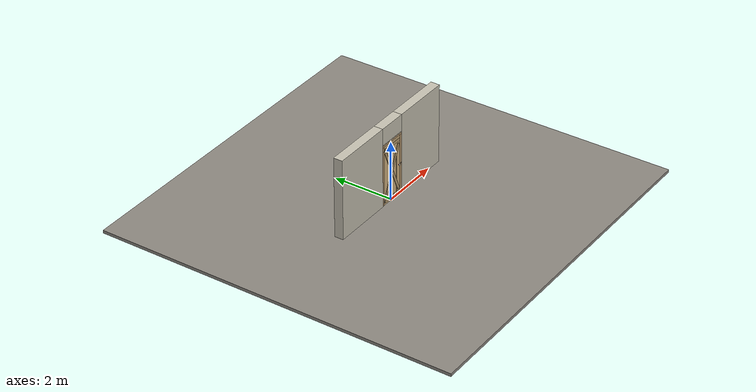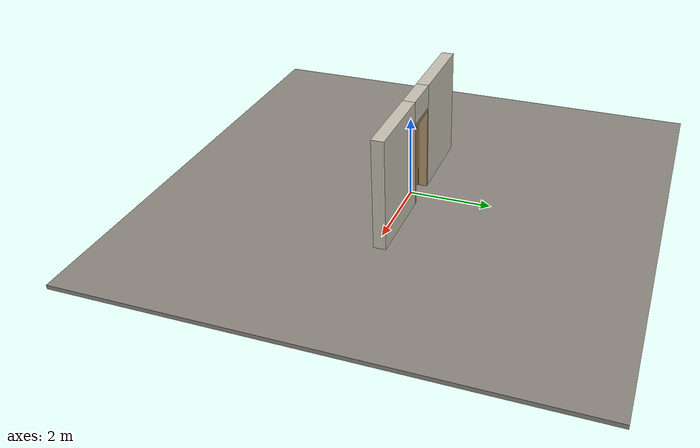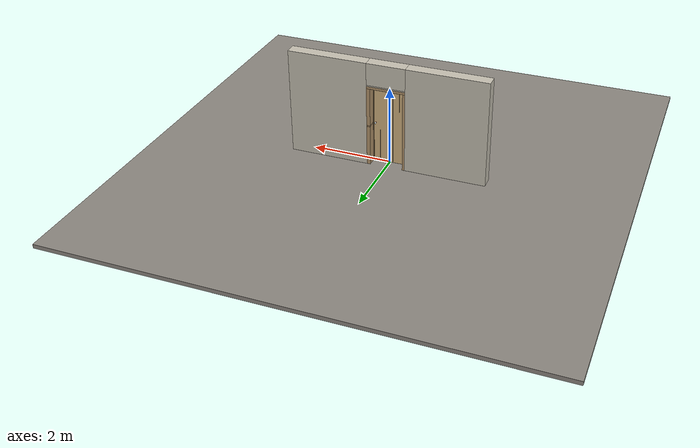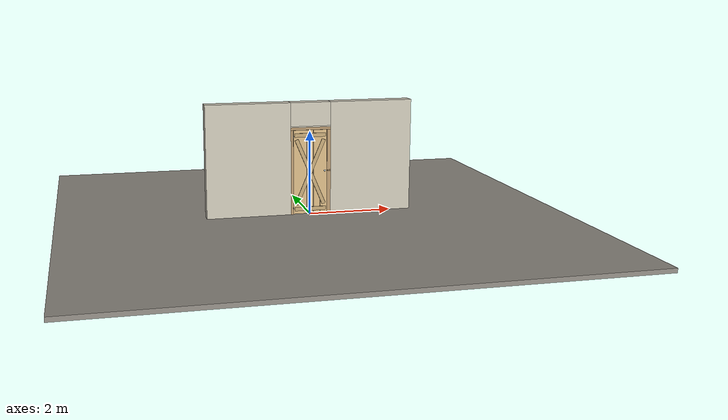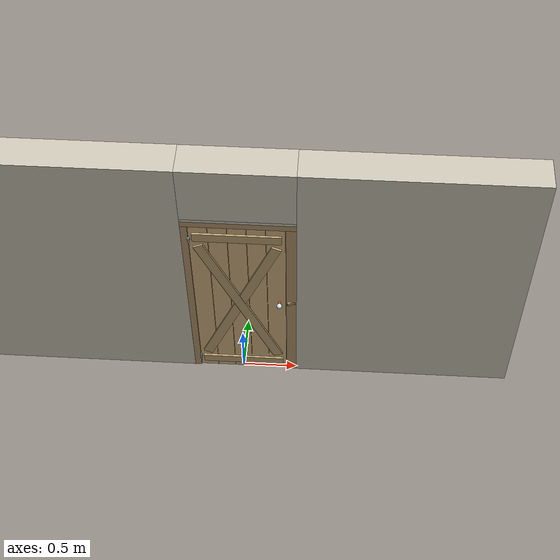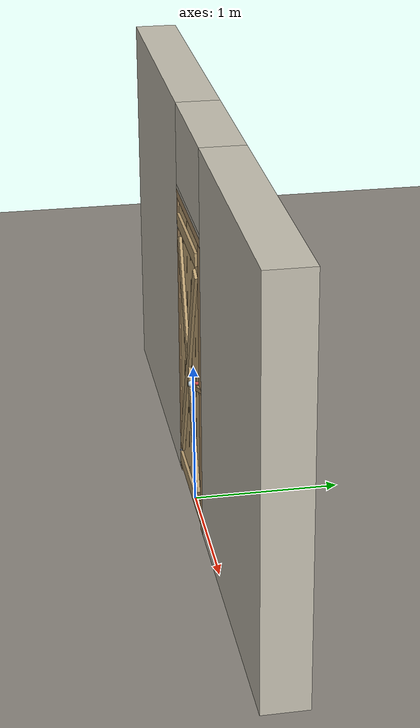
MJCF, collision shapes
<?xml version="1.0" ?>
<mujoco model="db0793_swing_single_full">
  <compiler angle="radian" meshdir="../../hardware" texturedir="../../textures" autolimits="true" inertiafromgeom="false"/>
  <option timestep="0.002" integrator="implicitfast" cone="elliptic" impratio="10" noslip_iterations="3">
    <flag multiccd="enable"/>
  </option>
  <size memory="16M"/>
  <default>
    <geom condim="4" solref="0.005 1" solimp="0.95 0.99 0.001"/>
    <joint solreflimit="0.005 1" solimplimit="0.95 0.99 0.001"/>
    <tendon solreflimit="0.005 1"/>
    <equality solref="0.002 1"/>
  </default>
  <visual>
    <headlight ambient="0.4 0.4 0.4" diffuse="0.7 0.7 0.7" specular="0.2 0.2 0.2"/>
    <quality shadowsize="4096"/>
    <map znear="0.01" zfar="60"/>
  </visual>
  <asset>
    <mesh name="knob_98a7916ed0" file="knob_98a7916ed0.obj"/>
    <mesh name="strap_hinge_78d1bbb966" file="strap_hinge_78d1bbb966.obj"/>
    <material name="mat_floor" rgba="0.55 0.53 0.5 1" specular="0.2" shininess="0.15" reflectance="0"/>
    <material name="mat_wall" rgba="0.78 0.76 0.7 1" specular="0.2" shininess="0.1" reflectance="0"/>
    <material name="mat_leaf" rgba="0.82 0.7 0.5 1" specular="0.2" shininess="0.45" reflectance="0"/>
    <material name="mat_leaf_brace" rgba="0.738 0.63 0.45 1" specular="0.2" shininess="0.2" reflectance="0"/>
    <material name="mat_hinge" rgba="0.65 0.66 0.68 1" specular="0.74" shininess="0.5" reflectance="0.36"/>
    <material name="mat_op_glass_clear" rgba="0.85 0.92 0.95 0.25" specular="0.2" shininess="0.95" reflectance="0.1"/>
    <material name="mat_trim" rgba="0.85 0.66 0.3 1" specular="0.8" shininess="0.75" reflectance="0.4"/>
    <material name="mat_bolt" rgba="0.75 0.76 0.77 1" specular="0.8" shininess="0.65" reflectance="0.4"/>
    <material name="mat_frame" rgba="0.7 0.58 0.42 1" specular="0.2" shininess="0.5" reflectance="0"/>
    <material name="mat_seal" rgba="0.1 0.1 0.1 1" specular="0.2" shininess="0.1" reflectance="0"/>
    <texture name="skybox" type="skybox" builtin="gradient" rgb1="0.6 0.7 0.85" rgb2="0.9 0.92 0.95" width="256" height="256"/>
  </asset>
  <worldbody>
    <light name="sun" pos="1.5 -2.5 4" dir="-0.3 0.5 -0.8" directional="true" diffuse="0.8 0.8 0.8" specular="0.3 0.3 0.3" castshadow="true"/>
    <light name="fill" pos="-1.5 2.5 3" dir="0.3 -0.5 -0.7" directional="true" diffuse="0.35 0.35 0.4" castshadow="false"/>
    <camera name="robot_view" pos="0 -2.421187 1.734312" xyaxes="1 0 0 0 0.26963 0.962964" fovy="52"/>
    <camera name="far_view" pos="0 2.663187 1.734312" xyaxes="-1 0 0 0 -0.26963 0.962964" fovy="52"/>
    <camera name="iso" pos="1.932062 -2.014438 2.141063" xyaxes="0.741536 0.670913 0 -0.242917 0.268487 0.932151" fovy="46"/>
    <camera name="detail_handle" pos="0.5305 -0.867 1.33" xyaxes="0.97561 0.219512 0 -0.070934 0.315262 0.94635" fovy="38"/>
    <geom name="floor" type="box" size="6 6 0.05" pos="0 0 -0.05" material="mat_floor" group="0" contype="1" conaffinity="1" friction="0.8 0.005 0.0001" density="2400"/>
    <geom name="wall_left" type="box" size="1.01475 0.15 1.35" pos="-1.48525 0.121 1.35" material="mat_wall" group="0" contype="1" conaffinity="1" friction="0.6 0.005 0.0001" density="800"/>
    <geom name="wall_right" type="box" size="0.99975 0.15 1.35" pos="1.50025 0.121 1.35" material="mat_wall" group="0" contype="1" conaffinity="1" friction="0.6 0.005 0.0001" density="800"/>
    <geom name="wall_header" type="box" size="0.4855 0.15 0.2825" pos="0.015 0.121 2.4175" material="mat_wall" group="0" contype="1" conaffinity="1" friction="0.6 0.005 0.0001" density="800"/>
    <geom name="hinge_pintle_0" type="cylinder" size="0.008 0.02" pos="-0.4075 -0.029 0.133" material="mat_hinge" group="1" contype="0" conaffinity="0" density="7850"/>
    <geom name="hinge_pintle_1" type="cylinder" size="0.008 0.02" pos="-0.4075 -0.029 1.865" material="mat_hinge" group="1" contype="0" conaffinity="0" density="7850"/>
    <geom name="jamb_hinge" type="box" size="0.03 0.15 1.0225" pos="-0.4405 0.121 1.0225" material="mat_frame" group="0" contype="1" conaffinity="1" friction="0.6 0.005 0.0001" density="750"/>
    <geom name="strike_1050_wall_n" type="box" size="0.045 0.13225 0.015" pos="0.4555 0.13875 1.05" material="mat_frame" group="0" contype="1" conaffinity="1" friction="0.6 0.005 0.0001" density="750"/>
    <geom name="strike_1050_wall_p" type="box" size="0.045 0.008 0.015" pos="0.4555 -0.0145 1.05" material="mat_frame" group="0" contype="1" conaffinity="1" friction="0.6 0.005 0.0001" density="750"/>
    <geom name="strike_1050_ramp" type="box" size="0.045 0.016771 0.015" pos="0.458249 -0.017375 1.05" quat="0.973249 0 0 0.229753" material="mat_frame" group="0" contype="1" conaffinity="1" friction="0.12 0.005 0.0001" density="750"/>
    <geom name="strike_1050_back" type="box" size="0.036 0.0065 0.015" pos="0.4645 0 1.05" material="mat_frame" group="0" contype="1" conaffinity="1" friction="0.6 0.005 0.0001" density="750"/>
    <geom name="jamb_strike_0" type="box" size="0.045 0.15 0.5175" pos="0.4555 0.121 0.5175" material="mat_frame" group="0" contype="1" conaffinity="1" friction="0.6 0.005 0.0001" density="750"/>
    <geom name="jamb_strike_1" type="box" size="0.045 0.15 0.49" pos="0.4555 0.121 1.555" material="mat_frame" group="0" contype="1" conaffinity="1" friction="0.6 0.005 0.0001" density="750"/>
    <geom name="jamb_head" type="box" size="0.4855 0.15 0.03" pos="0.015 0.121 2.075" material="mat_frame" group="0" contype="1" conaffinity="1" friction="0.6 0.005 0.0001" density="750"/>
    <geom name="head_stud" type="box" size="0.4855 0.15 0.015" pos="0.015 0.121 2.12" material="mat_wall" group="0" contype="1" conaffinity="1" friction="0.6 0.005 0.0001" density="500"/>
    <geom name="stop_hinge" type="box" size="0.0055 0.016 1.0225" pos="-0.405 0.0385 1.0225" material="mat_frame" group="0" contype="1" conaffinity="1" friction="0.6 0.005 0.0001" density="750"/>
    <geom name="stop_strike" type="box" size="0.0055 0.016 1.0225" pos="0.405 0.0385 1.0225" material="mat_frame" group="0" contype="1" conaffinity="1" friction="0.6 0.005 0.0001" density="750"/>
    <geom name="stop_head" type="box" size="0.4105 0.016 0.0055" pos="0 0.0385 2.0395" material="mat_frame" group="0" contype="1" conaffinity="1" friction="0.6 0.005 0.0001" density="750"/>
    <geom name="seal_hinge" type="box" size="0.004 0.002 1.0225" pos="-0.4075 0.024 1.0225" material="mat_seal" group="1" contype="0" conaffinity="0" density="1100"/>
    <geom name="seal_strike" type="box" size="0.004 0.002 1.0225" pos="0.4075 0.024 1.0225" material="mat_seal" group="1" contype="0" conaffinity="0" density="1100"/>
    <geom name="seal_head" type="box" size="0.3905 0.002 0.008" pos="0 0.024 2.033" material="mat_seal" group="1" contype="0" conaffinity="0" density="1100"/>
    <geom name="hinge_pintle_0_strap_0" type="box" size="0.0064 0.022 0.016" pos="-0.4075 0.0005 0.133" material="mat_hinge" group="1" contype="0" conaffinity="0" density="7850"/>
    <geom name="hinge_pintle_1_strap_0" type="box" size="0.0064 0.022 0.016" pos="-0.4075 0.0005 1.865" material="mat_hinge" group="1" contype="0" conaffinity="0" density="7850"/>
    <site name="approach_point" pos="0 -1.5 0" quat="1 0 0 0" size="0.05" rgba="0.2 0.9 0.2 0.5" group="4"/>
    <site name="goal_point" pos="0 1.5 0" quat="1 0 0 0" size="0.05" rgba="0.2 0.9 0.2 0.5" group="4"/>
    <site name="door_plane_center" pos="0 0 1.0225" quat="1 0 0 0" size="0.02" rgba="0.2 0.9 0.2 0.5" group="4"/>
    <body name="leaf" pos="-0.4105 0 0">
      <inertial pos="0.392666 -0.00162 1.025009" mass="30.976534" quat="0.498198 0.501802 -0.498192 0.501796" diaginertia="1.757085887 11.460727458 13.206164521"/>
      <joint name="leaf_hinge" type="hinge" axis="0 0 -1" pos="0.003 -0.029 0" limited="true" range="0 1.396263" solreflimit="0.02 1" damping="0.210326" frictionloss="4.261789" armature="0.02"/>
      <geom name="leaf_slab" type="box" size="0.4065 0.022 1.016" pos="0.4095 0 1.025" material="mat_leaf" group="0" contype="1" conaffinity="1" friction="0.35 0.005 0.0001" density="1"/>
      <geom name="leaf_plank_gap_1" type="box" size="0.002 0.023 1.006" pos="0.1656 0 1.025" material="mat_leaf_brace" group="1" contype="0" conaffinity="0" density="1"/>
      <geom name="leaf_plank_gap_2" type="box" size="0.002 0.023 1.006" pos="0.3282 0 1.025" material="mat_leaf_brace" group="1" contype="0" conaffinity="0" density="1"/>
      <geom name="leaf_plank_gap_3" type="box" size="0.002 0.023 1.006" pos="0.4908 0 1.025" material="mat_leaf_brace" group="1" contype="0" conaffinity="0" density="1"/>
      <geom name="leaf_plank_gap_4" type="box" size="0.002 0.023 1.006" pos="0.6534 0 1.025" material="mat_leaf_brace" group="1" contype="0" conaffinity="0" density="1"/>
      <geom name="leaf_batten_12" type="box" size="0.3765 0.01 0.045" pos="0.4095 -0.032 0.129" material="mat_leaf_brace" group="1" contype="0" conaffinity="0" density="1"/>
      <geom name="leaf_batten_192" type="box" size="0.3765 0.01 0.045" pos="0.4095 -0.032 1.921" material="mat_leaf_brace" group="1" contype="0" conaffinity="0" density="1"/>
      <geom name="leaf_brace_z" type="box" size="0.85344 0.01 0.045" pos="0.4095 -0.032 1.025" quat="0.833751 0 -0.55214 0" material="mat_leaf_brace" group="1" contype="0" conaffinity="0" density="1"/>
      <geom name="leaf_brace_x" type="box" size="0.85344 0.01 0.045" pos="0.4095 -0.032 1.025" quat="0.833751 0 0.55214 0" material="mat_leaf_brace" group="1" contype="0" conaffinity="0" density="1"/>
      <geom name="hinge_strap_0" type="mesh" mesh="strap_hinge_78d1bbb966" pos="0.003 -0.025 0.159" material="mat_hinge" group="1" contype="0" conaffinity="0" density="7850"/>
      <geom name="hinge_strap_eye_0" type="cylinder" size="0.011 0.012" pos="0.003 -0.029 0.159" material="mat_hinge" group="1" contype="0" conaffinity="0" density="7850"/>
      <geom name="hinge_strap_neck_0" type="box" size="0.012 0.006 0.006" pos="0.003 -0.027 0.159" material="mat_hinge" group="1" contype="0" conaffinity="0" density="7850"/>
      <geom name="hinge_strap_1" type="mesh" mesh="strap_hinge_78d1bbb966" pos="0.003 -0.025 1.891" material="mat_hinge" group="1" contype="0" conaffinity="0" density="7850"/>
      <geom name="hinge_strap_eye_1" type="cylinder" size="0.011 0.012" pos="0.003 -0.029 1.891" material="mat_hinge" group="1" contype="0" conaffinity="0" density="7850"/>
      <geom name="hinge_strap_neck_1" type="box" size="0.012 0.006 0.006" pos="0.003 -0.027 1.891" material="mat_hinge" group="1" contype="0" conaffinity="0" density="7850"/>
      <geom name="leaf_latch_bolt_faceplate" type="box" size="0.0006 0.011 0.025" pos="0.8154 0 1.05" material="mat_bolt" group="1" contype="0" conaffinity="0" density="8500"/>
      <site name="leaf_edge_mid" pos="0.816 0 1.016" quat="1 0 0 0" size="0.02" rgba="0.2 0.9 0.2 0.5" group="4"/>
      <body name="leaf_handle" pos="0.761 0 1.05">
        <inertial pos="0 0 0" mass="0.971799" quat="-0.5 0.5 -0.5 0.5" diaginertia="0.000215316 0.003456691 0.003456691"/>
        <joint name="leaf_handle_hinge" type="hinge" axis="0 -1 0" limited="true" range="0 0.8" damping="0.119589" frictionloss="0.032" stiffness="0.35" springref="-0.428571" armature="0.01"/>
        <geom name="leaf_handle_spindle" type="cylinder" size="0.006 0.03" pos="0 0 0" quat="0.707107 -0.707107 0 0" material="mat_op_glass_clear" group="1" contype="0" conaffinity="0" density="7850"/>
        <geom name="leaf_handle_knob_n" type="mesh" mesh="knob_98a7916ed0" pos="0 -0.022 0" quat="0.707107 0.707107 0 0" material="mat_op_glass_clear" group="1" contype="0" conaffinity="0" density="3000"/>
        <geom name="leaf_handle_knob_col_n" type="sphere" size="0.0234" pos="0 -0.067 0" material="mat_op_glass_clear" group="0" contype="1" conaffinity="1" friction="0.9 0.01 0.0001" density="3000"/>
        <geom name="leaf_handle_knob_neck_n" type="cylinder" size="0.011 0.012" pos="0 -0.034 0" quat="0.707107 -0.707107 0 0" material="mat_op_glass_clear" group="3" contype="1" conaffinity="1" rgba="0.8 0.3 0.3 0.25" friction="0.6 0.005 0.0001" density="3000"/>
        <geom name="leaf_handle_knob_p" type="mesh" mesh="knob_98a7916ed0" pos="0 0.022 0" quat="-0.707107 0.707107 0 0" material="mat_op_glass_clear" group="1" contype="0" conaffinity="0" density="3000"/>
        <geom name="leaf_handle_knob_col_p" type="sphere" size="0.0234" pos="0 0.067 0" material="mat_op_glass_clear" group="0" contype="1" conaffinity="1" friction="0.9 0.01 0.0001" density="3000"/>
        <geom name="leaf_handle_knob_neck_p" type="cylinder" size="0.011 0.012" pos="0 0.034 0" quat="0.707107 -0.707107 0 0" material="mat_op_glass_clear" group="3" contype="1" conaffinity="1" rgba="0.8 0.3 0.3 0.25" friction="0.6 0.005 0.0001" density="3000"/>
        <site name="leaf_handle_grip_n" pos="0 -0.067 0" quat="1 0 0 0" size="0.012" rgba="0.2 0.9 0.2 0.5" group="4"/>
        <site name="leaf_handle_grip_p" pos="0 0.067 0" quat="1 0 0 0" size="0.012" rgba="0.2 0.9 0.2 0.5" group="4"/>
      </body>
      <body name="leaf_latch_bolt" pos="0.816 0 1.05">
        <inertial pos="-0.008 0 0" mass="0.027149" quat="0 0 0.707107 0.707107" diaginertia="0.000000328 0.000003943 0.000003943"/>
        <joint name="leaf_latch_bolt_slide" type="slide" axis="-1 0 0" limited="true" range="0 0.014" damping="2" frictionloss="0.3" stiffness="400" springref="-0.01" armature="0.1"/>
        <geom name="leaf_latch_bolt_capsule" type="capsule" size="0.005 0.017" pos="-0.008 0 0" quat="0.707107 0 0.707107 0" material="mat_bolt" group="0" contype="1" conaffinity="1" friction="0.2 0.005 0.0001" density="8500"/>
      </body>
    </body>
  </worldbody>
  <tendon>
    <fixed name="leaf_latch_bolt_coupling" limited="true" range="0 10">
      <joint joint="leaf_latch_bolt_slide" coef="1"/>
      <joint joint="leaf_handle_hinge" coef="-0.021538"/>
    </fixed>
  </tendon>
  <sensor>
    <jointpos name="leaf_hinge_pos" joint="leaf_hinge"/>
    <jointvel name="leaf_hinge_vel" joint="leaf_hinge"/>
    <jointpos name="leaf_handle_hinge_pos" joint="leaf_handle_hinge"/>
    <jointvel name="leaf_handle_hinge_vel" joint="leaf_handle_hinge"/>
    <jointpos name="leaf_latch_bolt_slide_pos" joint="leaf_latch_bolt_slide"/>
    <jointvel name="leaf_latch_bolt_slide_vel" joint="leaf_latch_bolt_slide"/>
  </sensor>
</mujoco>
